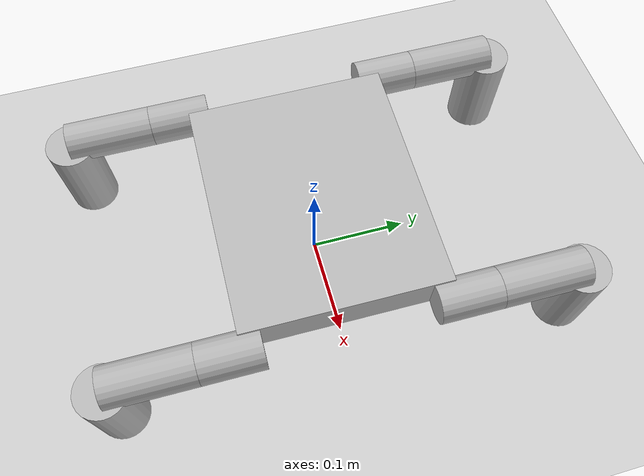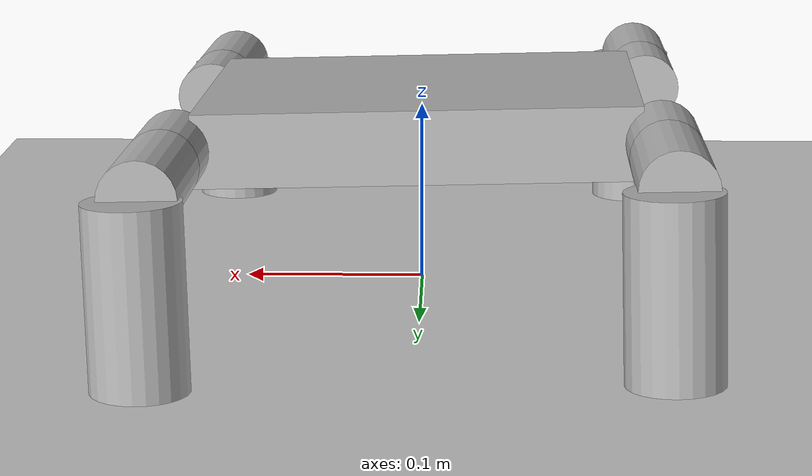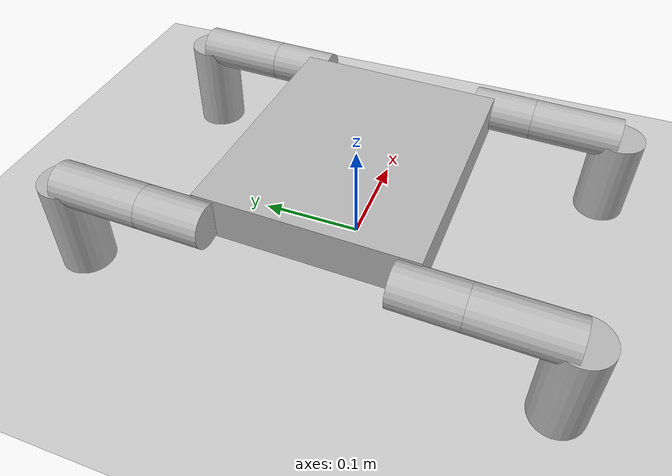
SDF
<sdf version="1.6">
 <world name="default">
  <physics name="default_physics" default="0" type="ode">
   <ode>
    <solver>
     <type>world</type>
     <iters>50</iters>
     <precon_iters>0</precon_iters>
     <sor>1.3</sor>
     <use_dynamic_moi_rescaling>0</use_dynamic_moi_rescaling>
    </solver>
    <constraints>
     <cfm>0</cfm>
     <erp>0.2</erp>
     <contact_max_correcting_vel>100</contact_max_correcting_vel>
     <contact_surface_layer>0.001</contact_surface_layer>
    </constraints>
   </ode>
   <max_step_size>0.001</max_step_size>
   <real_time_factor>1</real_time_factor>
   <real_time_update_rate>1000</real_time_update_rate>
  </physics>
  <light name="sun" type="directional">
   <pose>0 0 10 0 -0 0</pose>
   <diffuse>0.8 0.8 0.8 1</diffuse>
   <specular>0.2 0.2 0.2 1</specular>
   <attenuation>
    <range>1000</range>
    <constant>0.9</constant>
    <linear>0.01</linear>
    <quadratic>0.001</quadratic>
   </attenuation>
   <direction>-0.5 0.1 -0.9</direction>
  </light>
  <model name="ground_plane">
   <static>1</static>
   <link name="link">
    <collision name="collision">
     <geometry><plane><normal>0 0 1</normal><size>100 100</size></plane></geometry>
     <surface>
      <contact><collide_bitmask>65535</collide_bitmask></contact>
      <friction><ode><mu>100</mu><mu2>50</mu2></ode></friction>
     </surface>
    </collision>
    <visual name="visual">
     <cast_shadows>0</cast_shadows>
     <geometry><plane><normal>0 0 1</normal><size>100 100</size></plane></geometry>
     <material>
      <script><uri>file://media/materials/scripts/gazebo.material</uri><name>Gazebo/Grey</name></script>
     </material>
    </visual>
   </link>
  </model>
  <model name="pexod">
   <pose>-0.000442 0.000273 0.093452 0.015815 0.026061 -0.017325</pose>
   <link name="base_link">
    <inertial>
     <mass>1.031</mass>
     <inertia>
      <ixx>0.00357413</ixx>
      <ixy>0</ixy>
      <ixz>0</ixz>
      <iyy>0.00508627</iyy>
      <iyz>0</iyz>
      <izz>0.00838547</izz>
     </inertia>
    </inertial>
    <collision name="base_link_collision"><geometry><box><size>0.24 0.2 0.04</size></box></geometry></collision>
    <visual name="base_link_visual"><geometry><box><size>0.24 0.2 0.04</size></box></geometry></visual>
   </link>
   <link name="leg_0_1">
    <pose>0.12 -0.08 0 0 -0 0</pose>
    <inertial>
     <pose>0.01 -0.03 0 1.5708 -0 0</pose>
     <mass>0.184</mass>
     <inertia><ixx>8e-06</ixx><ixy>0</ixy><ixz>0</ixz><iyy>8e-06</iyy><iyz>0</iyz><izz>6.66667e-07</izz></inertia>
    </inertial>
    <collision name="leg_0_1_collision">
     <pose>0.01 -0.03 0 1.5708 -0 0</pose>
     <geometry><cylinder><length>0.06</length><radius>0.02</radius></cylinder></geometry>
    </collision>
    <visual name="leg_0_1_visual">
     <pose>0.01 -0.03 0 1.5708 -0 0</pose>
     <geometry><cylinder><length>0.06</length><radius>0.02</radius></cylinder></geometry>
    </visual>
   </link>
   <joint name="body_leg_0" type="revolute">
    <child>leg_0_1</child>
    <parent>base_link</parent>
    <axis>
     <xyz>0 0 1</xyz>
     <limit><lower>-0.785398</lower><upper>0.785398</upper><effort>20</effort><velocity>2</velocity></limit>
     <dynamics><spring_reference>0</spring_reference><spring_stiffness>0</spring_stiffness></dynamics>
     <use_parent_model_frame>1</use_parent_model_frame>
    </axis>
   </joint>
   <link name="leg_0_2">
    <pose>0.12 -0.14 0 0 -0 0</pose>
    <inertial>
     <pose>0.01 -0.0425 0 1.5708 -0 0</pose>
     <mass>0.184</mass>
     <inertia>
      <ixx>0.000129183</ixx>
      <ixy>0</ixy>
      <ixz>0</ixz>
      <iyy>0.000129183</iyy>
      <iyz>0</iyz>
      <izz>6.13333e-06</izz>
     </inertia>
    </inertial>
    <collision name="leg_0_2_collision">
     <pose>0.01 -0.0425 0 1.5708 -0 0</pose>
     <geometry><cylinder><length>0.085</length><radius>0.02</radius></cylinder></geometry>
    </collision>
    <visual name="leg_0_2_visual">
     <pose>0.01 -0.0425 0 1.5708 -0 0</pose>
     <geometry><cylinder><length>0.085</length><radius>0.02</radius></cylinder></geometry>
    </visual>
   </link>
   <joint name="leg_0_1_2" type="revolute">
    <child>leg_0_2</child>
    <parent>leg_0_1</parent>
    <axis>
     <xyz>1 0 0</xyz>
     <limit><lower>-0.785398</lower><upper>0.785398</upper><effort>20</effort><velocity>2</velocity></limit>
     <dynamics><spring_reference>0</spring_reference><spring_stiffness>0</spring_stiffness></dynamics>
     <use_parent_model_frame>1</use_parent_model_frame>
    </axis>
   </joint>
   <link name="leg_0_3">
    <pose>0.12 -0.225 0 1.5708 -0 0</pose>
    <inertial>
     <pose>0.0125 -0.0475 0 1.5708 -0 0</pose>
     <mass>0.184</mass>
     <inertia>
      <ixx>0.000129183</ixx>
      <ixy>0</ixy>
      <ixz>0</ixz>
      <iyy>0.000129183</iyy>
      <iyz>0</iyz>
      <izz>6.13333e-06</izz>
     </inertia>
    </inertial>
    <collision name="leg_0_3_collision">
     <pose>0.0125 -0.0475 0 1.5708 -0 0</pose>
     <geometry><cylinder><length>0.095</length><radius>0.025</radius></cylinder></geometry>
    </collision>
    <visual name="leg_0_3_visual">
     <pose>0.0125 -0.0475 0 1.5708 -0 0</pose>
     <geometry><cylinder><length>0.095</length><radius>0.025</radius></cylinder></geometry>
    </visual>
   </link>
   <joint name="leg_0_2_3" type="revolute">
    <child>leg_0_3</child>
    <parent>leg_0_2</parent>
    <axis>
     <xyz>1 0 0</xyz>
     <limit><lower>-0.785398</lower><upper>0.785398</upper><effort>20</effort><velocity>2</velocity></limit>
     <dynamics><spring_reference>0</spring_reference><spring_stiffness>0</spring_stiffness></dynamics>
     <use_parent_model_frame>1</use_parent_model_frame>
    </axis>
   </joint>
   <link name="leg_2_1">
    <pose>-0.14 -0.08 0 0 -0 0</pose>
    <inertial>
     <pose>0.01 -0.03 0 1.5708 -0 0</pose>
     <mass>0.184</mass>
     <inertia><ixx>8e-06</ixx><ixy>0</ixy><ixz>0</ixz><iyy>8e-06</iyy><iyz>0</iyz><izz>6.66667e-07</izz></inertia>
    </inertial>
    <collision name="leg_2_1_collision">
     <pose>0.01 -0.03 0 1.5708 -0 0</pose>
     <geometry><cylinder><length>0.06</length><radius>0.02</radius></cylinder></geometry>
    </collision>
    <visual name="leg_2_1_visual">
     <pose>0.01 -0.03 0 1.5708 -0 0</pose>
     <geometry><cylinder><length>0.06</length><radius>0.02</radius></cylinder></geometry>
    </visual>
   </link>
   <joint name="body_leg_2" type="revolute">
    <child>leg_2_1</child>
    <parent>base_link</parent>
    <axis>
     <xyz>0 0 1</xyz>
     <limit><lower>-0.785398</lower><upper>0.785398</upper><effort>20</effort><velocity>2</velocity></limit>
     <dynamics><spring_reference>0</spring_reference><spring_stiffness>0</spring_stiffness></dynamics>
     <use_parent_model_frame>1</use_parent_model_frame>
    </axis>
   </joint>
   <link name="leg_2_2">
    <pose>-0.14 -0.14 0 0 -0 0</pose>
    <inertial>
     <pose>0.01 -0.0425 0 1.5708 -0 0</pose>
     <mass>0.184</mass>
     <inertia>
      <ixx>0.000129183</ixx>
      <ixy>0</ixy>
      <ixz>0</ixz>
      <iyy>0.000129183</iyy>
      <iyz>0</iyz>
      <izz>6.13333e-06</izz>
     </inertia>
    </inertial>
    <collision name="leg_2_2_collision">
     <pose>0.01 -0.0425 0 1.5708 -0 0</pose>
     <geometry><cylinder><length>0.085</length><radius>0.02</radius></cylinder></geometry>
    </collision>
    <visual name="leg_2_2_visual">
     <pose>0.01 -0.0425 0 1.5708 -0 0</pose>
     <geometry><cylinder><length>0.085</length><radius>0.02</radius></cylinder></geometry>
    </visual>
   </link>
   <joint name="leg_2_1_2" type="revolute">
    <child>leg_2_2</child>
    <parent>leg_2_1</parent>
    <axis>
     <xyz>1 0 0</xyz>
     <limit><lower>-0.785398</lower><upper>0.785398</upper><effort>20</effort><velocity>2</velocity></limit>
     <dynamics><spring_reference>0</spring_reference><spring_stiffness>0</spring_stiffness></dynamics>
     <use_parent_model_frame>1</use_parent_model_frame>
    </axis>
   </joint>
   <link name="leg_2_3">
    <pose>-0.14 -0.225 0 1.5708 -0 0</pose>
    <inertial>
     <pose>0.0125 -0.0475 0 1.5708 -0 0</pose>
     <mass>0.184</mass>
     <inertia>
      <ixx>0.000129183</ixx>
      <ixy>0</ixy>
      <ixz>0</ixz>
      <iyy>0.000129183</iyy>
      <iyz>0</iyz>
      <izz>6.13333e-06</izz>
     </inertia>
    </inertial>
    <collision name="leg_2_3_collision">
     <pose>0.0125 -0.0475 0 1.5708 -0 0</pose>
     <geometry><cylinder><length>0.095</length><radius>0.025</radius></cylinder></geometry>
    </collision>
    <visual name="leg_2_3_visual">
     <pose>0.0125 -0.0475 0 1.5708 -0 0</pose>
     <geometry><cylinder><length>0.095</length><radius>0.025</radius></cylinder></geometry>
    </visual>
   </link>
   <joint name="leg_2_2_3" type="revolute">
    <child>leg_2_3</child>
    <parent>leg_2_2</parent>
    <axis>
     <xyz>1 0 0</xyz>
     <limit><lower>-0.785398</lower><upper>0.785398</upper><effort>20</effort><velocity>2</velocity></limit>
     <dynamics><spring_reference>0</spring_reference><spring_stiffness>0</spring_stiffness></dynamics>
     <use_parent_model_frame>1</use_parent_model_frame>
    </axis>
   </joint>
   <link name="leg_3_1">
    <pose>-0.14 0.08 0 0 -0 0</pose>
    <inertial>
     <pose>0.01 0.03 0 1.5708 -0 0</pose>
     <mass>0.184</mass>
     <inertia><ixx>8e-06</ixx><ixy>0</ixy><ixz>0</ixz><iyy>8e-06</iyy><iyz>0</iyz><izz>6.66667e-07</izz></inertia>
    </inertial>
    <collision name="leg_3_1_collision">
     <pose>0.01 0.03 0 1.5708 -0 0</pose>
     <geometry><cylinder><length>0.06</length><radius>0.02</radius></cylinder></geometry>
    </collision>
    <visual name="leg_3_1_visual">
     <pose>0.01 0.03 0 1.5708 -0 0</pose>
     <geometry><cylinder><length>0.06</length><radius>0.02</radius></cylinder></geometry>
    </visual>
   </link>
   <joint name="body_leg_3" type="revolute">
    <child>leg_3_1</child>
    <parent>base_link</parent>
    <axis>
     <xyz>0 0 1</xyz>
     <limit><lower>-0.785398</lower><upper>0.785398</upper><effort>20</effort><velocity>2</velocity></limit>
     <dynamics><spring_reference>0</spring_reference><spring_stiffness>0</spring_stiffness></dynamics>
     <use_parent_model_frame>1</use_parent_model_frame>
    </axis>
   </joint>
   <link name="leg_3_2">
    <pose>-0.14 0.14 0 0 -0 0</pose>
    <inertial>
     <pose>0.01 0.0425 0 1.5708 -0 0</pose>
     <mass>0.184</mass>
     <inertia>
      <ixx>0.000129183</ixx>
      <ixy>0</ixy>
      <ixz>0</ixz>
      <iyy>0.000129183</iyy>
      <iyz>0</iyz>
      <izz>6.13333e-06</izz>
     </inertia>
    </inertial>
    <collision name="leg_3_2_collision">
     <pose>0.01 0.0425 0 1.5708 -0 0</pose>
     <geometry><cylinder><length>0.085</length><radius>0.02</radius></cylinder></geometry>
    </collision>
    <visual name="leg_3_2_visual">
     <pose>0.01 0.0425 0 1.5708 -0 0</pose>
     <geometry><cylinder><length>0.085</length><radius>0.02</radius></cylinder></geometry>
    </visual>
   </link>
   <joint name="leg_3_1_2" type="revolute">
    <child>leg_3_2</child>
    <parent>leg_3_1</parent>
    <axis>
     <xyz>1 0 0</xyz>
     <limit><lower>-0.785398</lower><upper>0.785398</upper><effort>20</effort><velocity>2</velocity></limit>
     <dynamics><spring_reference>0</spring_reference><spring_stiffness>0</spring_stiffness></dynamics>
     <use_parent_model_frame>1</use_parent_model_frame>
    </axis>
   </joint>
   <link name="leg_3_3">
    <pose>-0.14 0.225 0 -1.5708 0 0</pose>
    <inertial>
     <pose>0.0125 0.0475 0 1.5708 -0 0</pose>
     <mass>0.184</mass>
     <inertia>
      <ixx>0.000129183</ixx>
      <ixy>0</ixy>
      <ixz>0</ixz>
      <iyy>0.000129183</iyy>
      <iyz>0</iyz>
      <izz>6.13333e-06</izz>
     </inertia>
    </inertial>
    <collision name="leg_3_3_collision">
     <pose>0.0125 0.0475 0 1.5708 -0 0</pose>
     <geometry><cylinder><length>0.095</length><radius>0.025</radius></cylinder></geometry>
    </collision>
    <visual name="leg_3_3_visual">
     <pose>0.0125 0.0475 0 1.5708 -0 0</pose>
     <geometry><cylinder><length>0.095</length><radius>0.025</radius></cylinder></geometry>
    </visual>
   </link>
   <joint name="leg_3_2_3" type="revolute">
    <child>leg_3_3</child>
    <parent>leg_3_2</parent>
    <axis>
     <xyz>1 0 0</xyz>
     <limit><lower>-0.785398</lower><upper>0.785398</upper><effort>20</effort><velocity>2</velocity></limit>
     <dynamics><spring_reference>0</spring_reference><spring_stiffness>0</spring_stiffness></dynamics>
     <use_parent_model_frame>1</use_parent_model_frame>
    </axis>
   </joint>
   <link name="leg_5_1">
    <pose>0.12 0.08 0 0 -0 0</pose>
    <inertial>
     <pose>0.01 0.03 0 1.5708 -0 0</pose>
     <mass>0.184</mass>
     <inertia><ixx>8e-06</ixx><ixy>0</ixy><ixz>0</ixz><iyy>8e-06</iyy><iyz>0</iyz><izz>6.66667e-07</izz></inertia>
    </inertial>
    <collision name="leg_5_1_collision">
     <pose>0.01 0.03 0 1.5708 -0 0</pose>
     <geometry><cylinder><length>0.06</length><radius>0.02</radius></cylinder></geometry>
    </collision>
    <visual name="leg_5_1_visual">
     <pose>0.01 0.03 0 1.5708 -0 0</pose>
     <geometry><cylinder><length>0.06</length><radius>0.02</radius></cylinder></geometry>
    </visual>
   </link>
   <joint name="body_leg_5" type="revolute">
    <child>leg_5_1</child>
    <parent>base_link</parent>
    <axis>
     <xyz>0 0 1</xyz>
     <limit><lower>-0.785398</lower><upper>0.785398</upper><effort>20</effort><velocity>2</velocity></limit>
     <dynamics><spring_reference>0</spring_reference><spring_stiffness>0</spring_stiffness></dynamics>
     <use_parent_model_frame>1</use_parent_model_frame>
    </axis>
   </joint>
   <link name="leg_5_2">
    <pose>0.12 0.14 0 0 -0 0</pose>
    <inertial>
     <pose>0.01 0.0425 0 1.5708 -0 0</pose>
     <mass>0.184</mass>
     <inertia>
      <ixx>0.000129183</ixx>
      <ixy>0</ixy>
      <ixz>0</ixz>
      <iyy>0.000129183</iyy>
      <iyz>0</iyz>
      <izz>6.13333e-06</izz>
     </inertia>
    </inertial>
    <collision name="leg_5_2_collision">
     <pose>0.01 0.0425 0 1.5708 -0 0</pose>
     <geometry><cylinder><length>0.085</length><radius>0.02</radius></cylinder></geometry>
    </collision>
    <visual name="leg_5_2_visual">
     <pose>0.01 0.0425 0 1.5708 -0 0</pose>
     <geometry><cylinder><length>0.085</length><radius>0.02</radius></cylinder></geometry>
    </visual>
   </link>
   <joint name="leg_5_1_2" type="revolute">
    <child>leg_5_2</child>
    <parent>leg_5_1</parent>
    <axis>
     <xyz>1 0 0</xyz>
     <limit><lower>-0.785398</lower><upper>0.785398</upper><effort>20</effort><velocity>2</velocity></limit>
     <dynamics><spring_reference>0</spring_reference><spring_stiffness>0</spring_stiffness></dynamics>
     <use_parent_model_frame>1</use_parent_model_frame>
    </axis>
   </joint>
   <link name="leg_5_3">
    <pose>0.12 0.225 0 -1.5708 0 0</pose>
    <inertial>
     <pose>0.0125 0.0475 0 1.5708 -0 0</pose>
     <mass>0.184</mass>
     <inertia>
      <ixx>0.000129183</ixx>
      <ixy>0</ixy>
      <ixz>0</ixz>
      <iyy>0.000129183</iyy>
      <iyz>0</iyz>
      <izz>6.13333e-06</izz>
     </inertia>
    </inertial>
    <collision name="leg_5_3_collision">
     <pose>0.0125 0.0475 0 1.5708 -0 0</pose>
     <geometry><cylinder><length>0.095</length><radius>0.025</radius></cylinder></geometry>
    </collision>
    <visual name="leg_5_3_visual">
     <pose>0.0125 0.0475 0 1.5708 -0 0</pose>
     <geometry><cylinder><length>0.095</length><radius>0.025</radius></cylinder></geometry>
    </visual>
   </link>
   <joint name="leg_5_2_3" type="revolute">
    <child>leg_5_3</child>
    <parent>leg_5_2</parent>
    <axis>
     <xyz>1 0 0</xyz>
     <limit><lower>-0.785398</lower><upper>0.785398</upper><effort>20</effort><velocity>2</velocity></limit>
     <dynamics><spring_reference>0</spring_reference><spring_stiffness>0</spring_stiffness></dynamics>
     <use_parent_model_frame>1</use_parent_model_frame>
    </axis>
   </joint>
   <plugin name="pexod_control" filename="libpexod_plugin.so"/>
  </model>
  <gravity>0 0 -9.8</gravity>
  <magnetic_field>6e-06 2.3e-05 -4.2e-05</magnetic_field>
  <atmosphere type="adiabatic"/>
  <scene><ambient>0.4 0.4 0.4 1</ambient><background>0.7 0.7 0.7 1</background><shadows>1</shadows></scene>
  <audio><device>default</device></audio>
  <spherical_coordinates>
   <surface_model>EARTH_WGS84</surface_model>
   <latitude_deg>0</latitude_deg>
   <longitude_deg>0</longitude_deg>
   <elevation>0</elevation>
   <heading_deg>0</heading_deg>
  </spherical_coordinates>
 </world>
</sdf>
